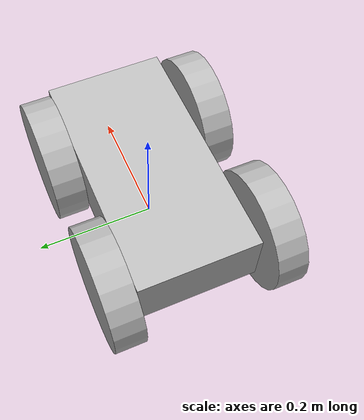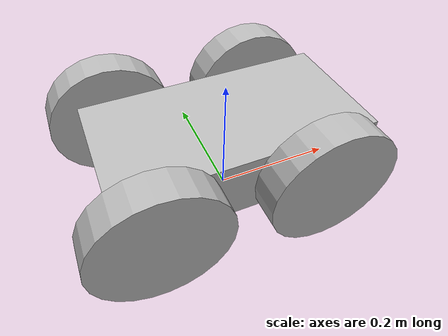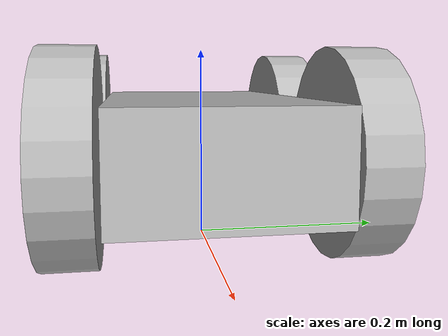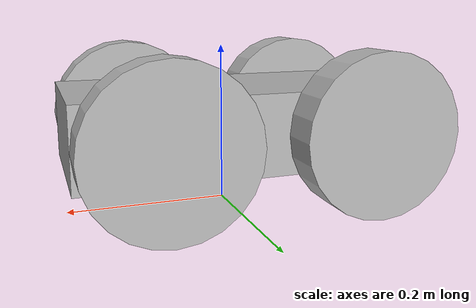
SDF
<?xml version='1.0'?>
<sdf version='1.6'>
  <model name='my_robot'>
    <static>true</static>
    <link name='chassis'>
      <pose frame=''>-0 0 0.1 0 -0 0</pose>
      <inertial>
        <inertia>
          <ixx>1</ixx>
          <ixy>0</ixy>
          <ixz>0</ixz>
          <iyy>1</iyy>
          <iyz>0</iyz>
          <izz>1</izz>
        </inertia>
        <mass>1</mass>
      </inertial>
      <self_collide>0</self_collide>
      <kinematic>0</kinematic>
      <visual name='visual'>
        <geometry>
          <box>
            <size>0.4 0.2 0.1</size>
          </box>
        </geometry>
        <material>
          <shader type='pixel'/>
        </material>
        <pose frame=''>0 0 0 0 -0 0</pose>
        <cast_shadows>1</cast_shadows>
        <transparency>0</transparency>
      </visual>
      <collision name='collision'>
        <laser_retro>0</laser_retro>
        <max_contacts>10</max_contacts>
        <pose frame=''>0 0 0 0 -0 0</pose>
        <geometry>
          <box>
            <size>0.4 0.2 0.1</size>
          </box>
        </geometry>
        <surface>
          <friction>
            <ode>
              <mu>1</mu>
              <mu2>1</mu2>
              <fdir1>0 0 0</fdir1>
              <slip1>0</slip1>
              <slip2>0</slip2>
            </ode>
            <torsional>
              <coefficient>1</coefficient>
              <patch_radius>0</patch_radius>
              <surface_radius>0</surface_radius>
              <use_patch_radius>1</use_patch_radius>
              <ode>
                <slip>0</slip>
              </ode>
            </torsional>
          </friction>
          <bounce>
            <restitution_coefficient>0</restitution_coefficient>
            <threshold>1e+06</threshold>
          </bounce>
          <contact>
            <collide_without_contact>0</collide_without_contact>
            <collide_without_contact_bitmask>1</collide_without_contact_bitmask>
            <collide_bitmask>1</collide_bitmask>
            <ode>
              <soft_cfm>0</soft_cfm>
              <soft_erp>0.2</soft_erp>
              <kp>1e+13</kp>
              <kd>1</kd>
              <max_vel>0.01</max_vel>
              <min_depth>0</min_depth>
            </ode>
            <bullet>
              <split_impulse>1</split_impulse>
              <split_impulse_penetration_threshold>-0.01</split_impulse_penetration_threshold>
              <soft_cfm>0</soft_cfm>
              <soft_erp>0.2</soft_erp>
              <kp>1e+13</kp>
              <kd>1</kd>
            </bullet>
          </contact>
        </surface>
      </collision>
    </link>
    <link name='left_wheel'>
      <pose frame=''>0.1 0.13 0.1 -0.000563 1.5707 1.57014</pose>
      <inertial>
        <inertia>
          <ixx>1</ixx>
          <ixy>0</ixy>
          <ixz>0</ixz>
          <iyy>1</iyy>
          <iyz>0</iyz>
          <izz>1</izz>
        </inertia>
        <mass>1</mass>
      </inertial>
      <self_collide>0</self_collide>
      <kinematic>0</kinematic>
      <visual name='visual'>
        <geometry>
          <cylinder>
            <radius>0.1</radius>
            <length>0.05</length>
          </cylinder>
        </geometry>
        <material>
          <shader type='pixel'/>
        </material>
        <pose frame=''>0 0 0 0 -0 0</pose>
        <cast_shadows>1</cast_shadows>
        <transparency>0</transparency>
      </visual>
      <collision name='collision'>
        <laser_retro>0</laser_retro>
        <max_contacts>10</max_contacts>
        <pose frame=''>0 0 0 0 -0 0</pose>
        <geometry>
          <cylinder>
            <radius>0.1</radius>
            <length>0.05</length>
          </cylinder>
        </geometry>
        <surface>
          <friction>
            <ode>
              <mu>1</mu>
              <mu2>1</mu2>
              <fdir1>0 0 0</fdir1>
              <slip1>0</slip1>
              <slip2>0</slip2>
            </ode>
            <torsional>
              <coefficient>1</coefficient>
              <patch_radius>0</patch_radius>
              <surface_radius>0</surface_radius>
              <use_patch_radius>1</use_patch_radius>
              <ode>
                <slip>0</slip>
              </ode>
            </torsional>
          </friction>
          <bounce>
            <restitution_coefficient>0</restitution_coefficient>
            <threshold>1e+06</threshold>
          </bounce>
          <contact>
            <collide_without_contact>0</collide_without_contact>
            <collide_without_contact_bitmask>1</collide_without_contact_bitmask>
            <collide_bitmask>1</collide_bitmask>
            <ode>
              <soft_cfm>0</soft_cfm>
              <soft_erp>0.2</soft_erp>
              <kp>1e+13</kp>
              <kd>1</kd>
              <max_vel>0.01</max_vel>
              <min_depth>0</min_depth>
            </ode>
            <bullet>
              <split_impulse>1</split_impulse>
              <split_impulse_penetration_threshold>-0.01</split_impulse_penetration_threshold>
              <soft_cfm>0</soft_cfm>
              <soft_erp>0.2</soft_erp>
              <kp>1e+13</kp>
              <kd>1</kd>
            </bullet>
          </contact>
        </surface>
      </collision>
    </link>
    <link name='right_wheel'>
      <pose frame=''>0.1 -0.13 0.1 -0.001801 1.5707 1.5689</pose>
      <inertial>
        <inertia>
          <ixx>1</ixx>
          <ixy>0</ixy>
          <ixz>0</ixz>
          <iyy>1</iyy>
          <iyz>0</iyz>
          <izz>1</izz>
        </inertia>
        <mass>1</mass>
        <pose frame=''>0 0 0 0 -0 0</pose>
      </inertial>
      <self_collide>0</self_collide>
      <kinematic>0</kinematic>
      <gravity>1</gravity>
      <visual name='visual'>
        <geometry>
          <cylinder>
            <radius>0.1</radius>
            <length>0.05</length>
          </cylinder>
        </geometry>
        <material>
          <shader type='pixel'>
            <normal_map>__default__</normal_map>
          </shader>
        </material>
        <pose frame=''>0 0 0 0 -0 0</pose>
        <cast_shadows>1</cast_shadows>
        <transparency>0</transparency>
      </visual>
      <collision name='collision'>
        <laser_retro>0</laser_retro>
        <max_contacts>10</max_contacts>
        <pose frame=''>0 0 0 0 -0 0</pose>
        <geometry>
          <cylinder>
            <radius>0.1</radius>
            <length>0.05</length>
          </cylinder>
        </geometry>
        <surface>
          <friction>
            <ode>
              <mu>1</mu>
              <mu2>1</mu2>
              <fdir1>0 0 0</fdir1>
              <slip1>0</slip1>
              <slip2>0</slip2>
            </ode>
            <torsional>
              <coefficient>1</coefficient>
              <patch_radius>0</patch_radius>
              <surface_radius>0</surface_radius>
              <use_patch_radius>1</use_patch_radius>
              <ode>
                <slip>0</slip>
              </ode>
            </torsional>
          </friction>
          <bounce>
            <restitution_coefficient>0</restitution_coefficient>
            <threshold>1e+06</threshold>
          </bounce>
          <contact>
            <collide_without_contact>0</collide_without_contact>
            <collide_without_contact_bitmask>1</collide_without_contact_bitmask>
            <collide_bitmask>1</collide_bitmask>
            <ode>
              <soft_cfm>0</soft_cfm>
              <soft_erp>0.2</soft_erp>
              <kp>1e+13</kp>
              <kd>1</kd>
              <max_vel>0.01</max_vel>
              <min_depth>0</min_depth>
            </ode>
            <bullet>
              <split_impulse>1</split_impulse>
              <split_impulse_penetration_threshold>-0.01</split_impulse_penetration_threshold>
              <soft_cfm>0</soft_cfm>
              <soft_erp>0.2</soft_erp>
              <kp>1e+13</kp>
              <kd>1</kd>
            </bullet>
          </contact>
        </surface>
      </collision>
    </link>
    <joint name='left_wheel_hinge' type='revolute'>
      <parent>chassis</parent>
      <child>left_wheel</child>
      <pose frame=''>0 0 -0.03 0 -0 0</pose>
      <axis>
        <xyz>0 1 0</xyz>
        <use_parent_model_frame>1</use_parent_model_frame>
        <limit>
          <lower>-1e+16</lower>
          <upper>1e+16</upper>
          <effort>-1</effort>
          <velocity>-1</velocity>
        </limit>
        <dynamics>
          <spring_reference>0</spring_reference>
          <spring_stiffness>0</spring_stiffness>
          <damping>0</damping>
          <friction>0</friction>
        </dynamics>
      </axis>
      <physics>
        <ode>
          <limit>
            <cfm>0</cfm>
            <erp>0.2</erp>
          </limit>
          <suspension>
            <cfm>0</cfm>
            <erp>0.2</erp>
          </suspension>
        </ode>
      </physics>
    </joint>
    <joint name='right_wheel_hinge' type='revolute'>
      <parent>chassis</parent>
      <child>right_wheel</child>
      <pose frame=''>0 0 0.03 0 -0 0</pose>
      <axis>
        <xyz>0 1 0</xyz>
        <use_parent_model_frame>1</use_parent_model_frame>
        <limit>
          <lower>-1e+16</lower>
          <upper>1e+16</upper>
          <effort>-1</effort>
          <velocity>-1</velocity>
        </limit>
        <dynamics>
          <spring_reference>0</spring_reference>
          <spring_stiffness>0</spring_stiffness>
          <damping>0</damping>
          <friction>0</friction>
        </dynamics>
      </axis>
      <physics>
        <ode>
          <limit>
            <cfm>0</cfm>
            <erp>0.2</erp>
          </limit>
          <suspension>
            <cfm>0</cfm>
            <erp>0.2</erp>
          </suspension>
        </ode>
      </physics>
    </joint>

    <link name='back_left_wheel'>
      <pose frame=''>-0.15 -0.13 0.1 -0.001801 1.5707 1.5689</pose>
      <inertial>
        <inertia>
          <ixx>1</ixx>
          <ixy>0</ixy>
          <ixz>0</ixz>
          <iyy>1</iyy>
          <iyz>0</iyz>
          <izz>1</izz>
        </inertia>
        <mass>1</mass>
      </inertial>
      <self_collide>0</self_collide>
      <kinematic>0</kinematic>
      <visual name='visual'>
        <geometry>
          <cylinder>
            <radius>0.1</radius>
            <length>0.05</length>
          </cylinder>
        </geometry>
        <material>
          <shader type='pixel'/>
        </material>
        <pose frame=''>0 0 0 0 -0 0</pose>
        <cast_shadows>1</cast_shadows>
        <transparency>0</transparency>
      </visual>
      <collision name='collision'>
        <laser_retro>0</laser_retro>
        <max_contacts>10</max_contacts>
        <pose frame=''>0 0 0 0 -0 0</pose>
        <geometry>
          <cylinder>
            <radius>0.1</radius>
            <length>0.05</length>
          </cylinder>
        </geometry>
        <surface>
          <friction>
            <ode>
              <mu>1</mu>
              <mu2>1</mu2>
              <fdir1>0 0 0</fdir1>
              <slip1>0</slip1>
              <slip2>0</slip2>
            </ode>
            <torsional>
              <coefficient>1</coefficient>
              <patch_radius>0</patch_radius>
              <surface_radius>0</surface_radius>
              <use_patch_radius>1</use_patch_radius>
              <ode>
                <slip>0</slip>
              </ode>
            </torsional>
          </friction>
          <bounce>
            <restitution_coefficient>0</restitution_coefficient>
            <threshold>1e+06</threshold>
          </bounce>
          <contact>
            <collide_without_contact>0</collide_without_contact>
            <collide_without_contact_bitmask>1</collide_without_contact_bitmask>
            <collide_bitmask>1</collide_bitmask>
            <ode>
              <soft_cfm>0</soft_cfm>
              <soft_erp>0.2</soft_erp>
              <kp>1e+13</kp>
              <kd>1</kd>
              <max_vel>0.01</max_vel>
              <min_depth>0</min_depth>
            </ode>
            <bullet>
              <split_impulse>1</split_impulse>
              <split_impulse_penetration_threshold>-0.01</split_impulse_penetration_threshold>
              <soft_cfm>0</soft_cfm>
              <soft_erp>0.2</soft_erp>
              <kp>1e+13</kp>
              <kd>1</kd>
            </bullet>
          </contact>
        </surface>
      </collision>
    </link>
    <link name='back_right_wheel'>
      <pose frame=''>-0.15 0.13 0.1 -0.001801 1.5707 1.5689</pose>

      <inertial>
        <inertia>
          <ixx>1</ixx>
          <ixy>0</ixy>
          <ixz>0</ixz>
          <iyy>1</iyy>
          <iyz>0</iyz>
          <izz>1</izz>
        </inertia>
        <mass>1</mass>
        <pose frame=''>0 0 0 0 -0 0</pose>
      </inertial>
      <self_collide>0</self_collide>
      <kinematic>0</kinematic>
      <gravity>1</gravity>
      <visual name='visual'>
        <geometry>
          <cylinder>
            <radius>0.1</radius>
            <length>0.05</length>
          </cylinder>
        </geometry>
        <material>
          <shader type='pixel'>
            <normal_map>__default__</normal_map>
          </shader>
        </material>
        <pose frame=''>0 0 0 0 -0 0</pose>
        <cast_shadows>1</cast_shadows>
        <transparency>0</transparency>
      </visual>
      <collision name='collision'>
        <laser_retro>0</laser_retro>
        <max_contacts>10</max_contacts>
        <pose frame=''>0 0 0 0 -0 0</pose>
        <geometry>
          <cylinder>
            <radius>0.1</radius>
            <length>0.05</length>
          </cylinder>
        </geometry>
        <surface>
          <friction>
            <ode>
              <mu>1</mu>
              <mu2>1</mu2>
              <fdir1>0 0 0</fdir1>
              <slip1>0</slip1>
              <slip2>0</slip2>
            </ode>
            <torsional>
              <coefficient>1</coefficient>
              <patch_radius>0</patch_radius>
              <surface_radius>0</surface_radius>
              <use_patch_radius>1</use_patch_radius>
              <ode>
                <slip>0</slip>
              </ode>
            </torsional>
          </friction>
          <bounce>
            <restitution_coefficient>0</restitution_coefficient>
            <threshold>1e+06</threshold>
          </bounce>
          <contact>
            <collide_without_contact>0</collide_without_contact>
            <collide_without_contact_bitmask>1</collide_without_contact_bitmask>
            <collide_bitmask>1</collide_bitmask>
            <ode>
              <soft_cfm>0</soft_cfm>
              <soft_erp>0.2</soft_erp>
              <kp>1e+13</kp>
              <kd>1</kd>
              <max_vel>0.01</max_vel>
              <min_depth>0</min_depth>
            </ode>
            <bullet>
              <split_impulse>1</split_impulse>
              <split_impulse_penetration_threshold>-0.01</split_impulse_penetration_threshold>
              <soft_cfm>0</soft_cfm>
              <soft_erp>0.2</soft_erp>
              <kp>1e+13</kp>
              <kd>1</kd>
            </bullet>
          </contact>
        </surface>
      </collision>
    </link>

    <joint name='back_left_wheel_hinge' type='revolute'>
      <parent>chassis</parent>
      <child>left_wheel</child>
      <pose frame=''>-0.15 0 -0.03 0 -0 0</pose>
      <axis>
        <xyz>0 1 0</xyz>
        <use_parent_model_frame>1</use_parent_model_frame>
        <limit>
          <lower>-1e+16</lower>
          <upper>1e+16</upper>
          <effort>-1</effort>
          <velocity>-1</velocity>
        </limit>
        <dynamics>
          <spring_reference>0</spring_reference>
          <spring_stiffness>0</spring_stiffness>
          <damping>0</damping>
          <friction>0</friction>
        </dynamics>
      </axis>
      <physics>
        <ode>
          <limit>
            <cfm>0</cfm>
            <erp>0.2</erp>
          </limit>
          <suspension>
            <cfm>0</cfm>
            <erp>0.2</erp>
          </suspension>
        </ode>
      </physics>
    </joint>
    <joint name='back_right_wheel_hinge' type='revolute'>
      <parent>chassis</parent>
      <child>right_wheel</child>
      <pose frame=''>-0.15 0 0.03 0 -0 0</pose>
      <axis>
        <xyz>0 1 0</xyz>
        <use_parent_model_frame>1</use_parent_model_frame>
        <limit>
          <lower>-1e+16</lower>
          <upper>1e+16</upper>
          <effort>-1</effort>
          <velocity>-1</velocity>
        </limit>
        <dynamics>
          <spring_reference>0</spring_reference>
          <spring_stiffness>0</spring_stiffness>
          <damping>0</damping>
          <friction>0</friction>
        </dynamics>
      </axis>
      <physics>
        <ode>
          <limit>
            <cfm>0</cfm>
            <erp>0.2</erp>
          </limit>
          <suspension>
            <cfm>0</cfm>
            <erp>0.2</erp>
          </suspension>
        </ode>
      </physics>
    </joint>

    <static>0</static>
    <allow_auto_disable>1</allow_auto_disable>
  </model>
</sdf>
